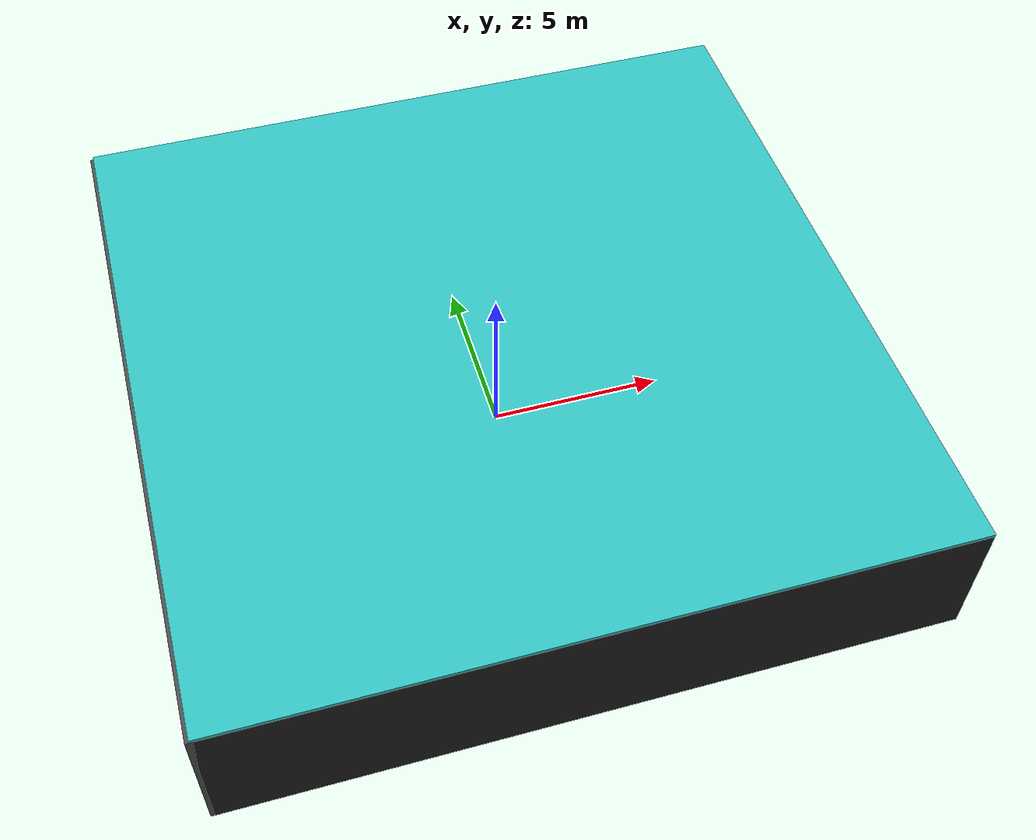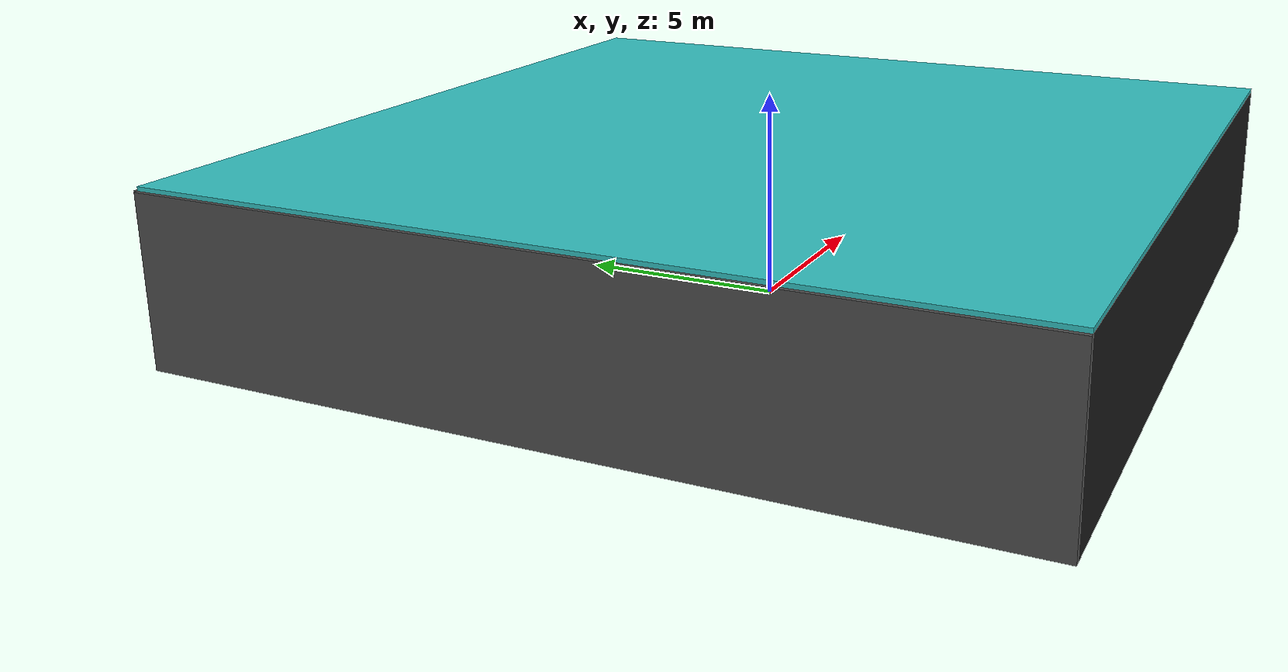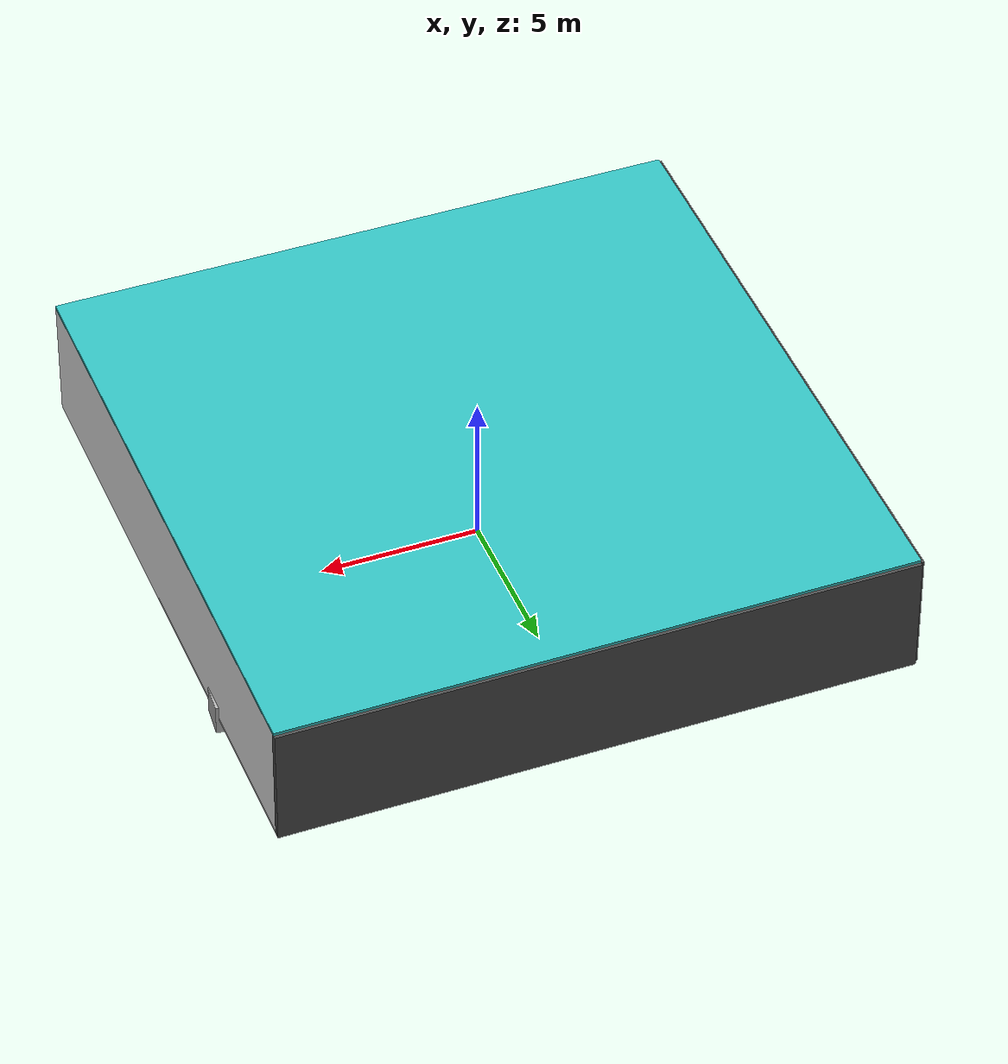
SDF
<sdf version="1.4">
 <world name="default">
  <physics type="ode">
   <max_step_size>0.001</max_step_size>
   <real_time_factor>1</real_time_factor>
   <real_time_update_rate>1000</real_time_update_rate>
   <gravity>0 0 -9.8</gravity>
  </physics>
  <scene><ambient>0.4 0.4 0.4 1</ambient><background>0.7 0.7 0.7 1</background><shadows>1</shadows></scene>
  <model name="Surrounding">
   <static>1</static>
   <link name="Ceiling">
    <collision name="Ceiling_Collision"><geometry><box><size>20 20 0.1</size></box></geometry></collision>
    <visual name="Ceiling_Visual">
     <geometry><box><size>20 20 0.1</size></box></geometry>
     <material>
      <script><uri>file://media/materials/scripts/gazebo.material</uri><name>Gazebo/TurquoiseGlow</name></script>
     </material>
    </visual>
    <pose>0 0 4.05 0 0 0</pose>
   </link>
   <link name="Wall_South">
    <collision name="Wall_South_Collision">
     <geometry><box><size>20 0 4</size></box></geometry>
     <pose>0 0 2 0 -0 0</pose>
    </collision>
    <visual name="Wall_South_Visual">
     <pose>0 0 2 0 -0 0</pose>
     <geometry><box><size>20 0 4</size></box></geometry>
     <material>
      <script><uri>file://media/materials/scripts/gazebo.material</uri><name>Gazebo/Black</name></script>
     </material>
    </visual>
    <velocity_decay><linear>0</linear><angular>0</angular></velocity_decay>
    <pose>0 -10 0 0 -0 0</pose>
   </link>
   <link name="Wall_East">
    <collision name="Wall_21_Collision">
     <geometry><box><size>20 0 4</size></box></geometry>
     <pose>0 0 2 0 -0 0</pose>
    </collision>
    <visual name="Wall_21_Visual">
     <pose>0 0 2 0 -0 0</pose>
     <geometry><box><size>20 0 4</size></box></geometry>
     <material>
      <script><uri>file://media/materials/scripts/gazebo.material</uri><name>Gazebo/WhiteGlow</name></script>
     </material>
    </visual>
    <velocity_decay><linear>0</linear><angular>0</angular></velocity_decay>
    <pose>10 0 0 0 -0 1.5708</pose>
   </link>
   <link name="Wall_North">
    <collision name="Wall_22_Collision">
     <geometry><box><size>20 0.2 4</size></box></geometry>
     <pose>0 0 2 0 -0 0</pose>
    </collision>
    <visual name="Wall_22_Visual">
     <pose>0 0 2 0 -0 0</pose>
     <geometry><box><size>20 0.2 4</size></box></geometry>
     <material>
      <script><uri>file://media/materials/scripts/gazebo.material</uri><name>Gazebo/DarkGrey</name></script>
     </material>
    </visual>
    <velocity_decay><linear>0</linear><angular>0</angular></velocity_decay>
    <pose>0 10 0 0 -0 0</pose>
   </link>
   <link name="Wall_West">
    <collision name="Wall_23_Collision">
     <geometry><box><size>20 0.2 4</size></box></geometry>
     <pose>0 0 2 0 -0 0</pose>
    </collision>
    <visual name="Wall_23_Visual">
     <pose>0 0 2 0 -0 0</pose>
     <geometry><box><size>20 0.2 4</size></box></geometry>
     <material>
      <script><uri>file://media/materials/scripts/gazebo.material</uri><name>Gazebo/DarkGrey</name></script>
     </material>
    </visual>
    <velocity_decay><linear>0</linear><angular>0</angular></velocity_decay>
    <pose>-10 0 0 0 0 -1.5708</pose>
   </link>
   <link name="Ground_link">
    <collision name="collision">
     <pose>0 0 .05 0 -0 0</pose>
     <geometry><box><size>20 20 0.1</size></box></geometry>
    </collision>
    <visual name="visual">
     <pose>0 0 .05 0 -0 0</pose>
     <geometry><box><size>20 20 0.1</size></box></geometry>
     <material>
      <script><uri>file://media/materials/scripts/gazebo.material</uri><name>Gazebo/LightOn</name></script>
     </material>
    </visual>
   </link>
   <static>1</static>
  </model>
  <spherical_coordinates>
   <surface_model>EARTH_WGS84</surface_model>
   <latitude_deg>0</latitude_deg>
   <longitude_deg>0</longitude_deg>
   <elevation>0</elevation>
   <heading_deg>0</heading_deg>
  </spherical_coordinates>
  <light name="lightball_0" type="diffuse">
   <diffuse>0.8 0.8 0.8 1</diffuse>
   <specular>0.2 0.2 0.2 1</specular>
   <attenuation>
    <range>100</range>
    <constant>0.7</constant>
    <linear>0.01</linear>
    <quadratic>0.001</quadratic>
   </attenuation>
   <direction>-0.5 0.1 -0.9</direction>
   <pose>-3.39669481193 -6.77028136865 2.27431678818 0 0 0</pose>
  </light>
  <light name="lightball_1" type="diffuse">
   <diffuse>0.8 0.8 0.8 1</diffuse>
   <specular>0.2 0.2 0.2 1</specular>
   <attenuation>
    <range>100</range>
    <constant>0.7</constant>
    <linear>0.01</linear>
    <quadratic>0.001</quadratic>
   </attenuation>
   <direction>-0.5 0.1 -0.9</direction>
   <pose>6.97211009853 0.411193106385 2.10613552725 0 0 0</pose>
  </light>
  <light name="lightball_2" type="diffuse">
   <diffuse>0.8 0.8 0.8 1</diffuse>
   <specular>0.2 0.2 0.2 1</specular>
   <attenuation>
    <range>100</range>
    <constant>0.7</constant>
    <linear>0.01</linear>
    <quadratic>0.001</quadratic>
   </attenuation>
   <direction>-0.5 0.1 -0.9</direction>
   <pose>0.783356035116 -2.47368946453 3.54785239624 0 0 0</pose>
  </light>
  <light name="lightball_3" type="diffuse">
   <diffuse>0.8 0.8 0.8 1</diffuse>
   <specular>0.2 0.2 0.2 1</specular>
   <attenuation>
    <range>100</range>
    <constant>0.7</constant>
    <linear>0.01</linear>
    <quadratic>0.001</quadratic>
   </attenuation>
   <direction>-0.5 0.1 -0.9</direction>
   <pose>-1.22190940146 -1.32787703109 3.31785164601 0 0 0</pose>
  </light>
  <light name="lightball_4" type="diffuse">
   <diffuse>0.8 0.8 0.8 1</diffuse>
   <specular>0.2 0.2 0.2 1</specular>
   <attenuation>
    <range>100</range>
    <constant>0.7</constant>
    <linear>0.01</linear>
    <quadratic>0.001</quadratic>
   </attenuation>
   <direction>-0.5 0.1 -0.9</direction>
   <pose>-5.96167035795 8.91870273146 3.27629597792 0 0 0</pose>
  </light>
  <light name="lightball_5" type="diffuse">
   <diffuse>0.8 0.8 0.8 1</diffuse>
   <specular>0.2 0.2 0.2 1</specular>
   <attenuation>
    <range>100</range>
    <constant>0.7</constant>
    <linear>0.01</linear>
    <quadratic>0.001</quadratic>
   </attenuation>
   <direction>-0.5 0.1 -0.9</direction>
   <pose>5.92025476365 1.30329072881 1.68338618005 0 0 0</pose>
  </light>
  <include>
   <uri>model://construction_cone</uri>
   <pose>-7.97734580967 -5.05610589051 0 0 0 1.11557061561</pose>
  </include>
  <include><uri>model://cabinet</uri><pose>-7.46816484719 -1.96391991012 0 0 0 2.47682528438</pose></include>
  <include><uri>model://cabinet</uri><pose>-8.09245692708 4.38567297668 0 0 0 1.17465332443</pose></include>
  <include>
   <uri>model://textured_shapes</uri>
   <pose>-3.80274443459 -4.94399831995 0 0 0 2.51253690202</pose>
  </include>
  <include>
   <uri>model://textured_shapes</uri>
   <pose>1.21479781615 2.25026408718 0 0 0 0.705449935435</pose>
  </include>
  <include><uri>model://table</uri><pose>1.69993702589 4.88250361474 0 0 0 0.165517522494</pose></include>
  <include>
   <uri>model://textured_shapes</uri>
   <pose>6.86998752299 -7.0218393604 0 0 0 0.088924162887</pose>
  </include>
  <include>
   <uri>model://textured_shapes</uri>
   <pose>8.05641081968 4.63151299567 0 0 0 1.46841193234</pose>
  </include>
 </world>
</sdf>

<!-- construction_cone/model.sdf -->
<sdf version="1.5">
  <model name="Construction Cone">
    <link name="link">
      <collision name="collision">
        <geometry>
          <mesh>
            <scale>10 10 10</scale>
            <uri>file://isr-testbed/construction_cone/meshes/construction_cone.dae</uri>
          </mesh>
        </geometry>
      </collision>
      <visual name="visual">
        <geometry>
          <mesh>
            <scale>10 10 10</scale>
            <uri>file://isr-testbed/construction_cone/meshes/construction_cone.dae</uri>
          </mesh>
        </geometry>
      </visual>
    </link>
  </model>
</sdf>

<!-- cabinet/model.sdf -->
<sdf version="1.5">
  <model name="cabinet">
    <static>true</static>
    <link name="cabinet_bottom_plate">
      <inertial>
        <pose>0 0 -1 0 0 0</pose>
        <inertia>
          <ixx>2.050000</ixx>
          <ixy>0</ixy>
          <ixz>0</ixz>
          <iyy>2.050000</iyy>
          <iyz>0</iyz>
          <izz>2.050000</izz>
        </inertia>
        <mass>25.000000</mass>
      </inertial>
      <collision name="cabinet_bottom_plate_geom">
        <pose>0 0 0.010000 0 0 0</pose>
        <geometry>
          <box>
            <size>0.450000 0.450000 0.020000</size>
          </box>
        </geometry>
      </collision>
      <visual name="cabinet_bottom_plate_geom_visual">
        <pose>0 0 0.010000 0 0 0</pose>
        <geometry>
          <box>
            <size>0.450000 0.450000 0.020000</size>
          </box>
        </geometry>
        <material>
          <script>
            <uri>model://media/materials/scripts/gazebo.material</uri>
            <name>Gazebo/Wood</name>
          </script>
        </material>
      </visual>
      <collision name="cabinet_bottom_plate_geom_cabinet_back_plate">
        <pose>0.235000 0 0.510000 0 0 0</pose>
        <geometry>
          <box>
            <size>0.020000 0.450000 1.020000</size>
          </box>
        </geometry>
      </collision>
      <visual name="cabinet_bottom_plate_geom_cabinet_back_plate_visual">
        <pose>0.235000 0 0.510000 0 0 0</pose>
        <geometry>
          <box>
            <size>0.020000 0.450000 1.020000</size>
          </box>
        </geometry>
        <material>
          <script>
            <uri>model://media/materials/scripts/gazebo.material</uri>
            <name>Gazebo/Wood</name>
          </script>
        </material>
      </visual>
      <collision name="cabinet_bottom_plate_geom_cabinet_left_plate">
        <pose>0 0.235000 0.510000 0 0 0</pose>
        <geometry>
          <box>
            <size>0.450000 0.020000 1.020000</size>
          </box>
        </geometry>
      </collision>
      <visual name="cabinet_bottom_plate_geom_cabinet_left_plate_visual">
        <pose>0 0.235000 0.510000 0 0 0</pose>
        <geometry>
          <box>
            <size>0.450000 0.020000 1.020000</size>
          </box>
        </geometry>
        <material>
          <script>
            <uri>model://media/materials/scripts/gazebo.material</uri>
            <name>Gazebo/Wood</name>
          </script>
        </material>
      </visual>
      <collision name="cabinet_bottom_plate_geom_cabinet_middle_plate">
        <pose>0 0 0.510000 0 0 0</pose>
        <geometry>
          <box>
            <size>0.450000 0.450000 0.020000</size>
          </box>
        </geometry>
      </collision>
      <visual name="cabinet_bottom_plate_geom_cabinet_middle_plate_visual">
        <pose>0 0 0.510000 0 0 0</pose>
        <geometry>
          <box>
            <size>0.450000 0.450000 0.020000</size>
          </box>
        </geometry>
        <material>
          <script>
            <uri>model://media/materials/scripts/gazebo.material</uri>
            <name>Gazebo/Wood</name>
          </script>
        </material>
      </visual>
      <collision name="cabinet_bottom_plate_geom_cabinet_right_plate">
        <pose>0 -0.235000 0.510000 0 0 0</pose>
        <geometry>
          <box>
            <size>0.450000 0.020000 1.020000</size>
          </box>
        </geometry>
      </collision>
      <visual name="cabinet_bottom_plate_geom_cabinet_right_plate_visual">
        <pose>0 -0.235000 0.510000 0 0 0</pose>
        <geometry>
          <box>
            <size>0.450000 0.020000 1.020000</size>
          </box>
        </geometry>
        <material>
          <script>
            <uri>model://media/materials/scripts/gazebo.material</uri>
            <name>Gazebo/Wood</name>
          </script>
        </material>
      </visual>
      <collision name="cabinet_bottom_plate_geom_cabinet_top_plate">
        <pose>0 0 1.010000 0 0 0</pose>
        <geometry>
          <box>
            <size>0.450000 0.450000 0.020000</size>
          </box>
        </geometry>
      </collision>
      <visual name="cabinet_bottom_plate_geom_cabinet_top_plate_visual">
        <pose>0 0 1.010000 0 0 0</pose>
        <geometry>
          <box>
            <size>0.450000 0.450000 0.020000</size>
          </box>
        </geometry>
        <material>
          <script>
            <uri>model://media/materials/scripts/gazebo.material</uri>
            <name>Gazebo/Wood</name>
          </script>
        </material>
      </visual>
    </link>
  </model>
</sdf>

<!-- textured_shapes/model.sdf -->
<sdf version="1.6">
  <model name="textured_shapes">
    <pose>0 0 0.5 0 0 0</pose>
    <link name="box">
      <pose>0 -1.5 0 0 0 0</pose>
      <collision name="collision">
        <geometry>
          <box>
            <size>1 1 1</size>
          </box>
        </geometry>
      </collision>
      <visual name="visual">
        <geometry>
          <box>
            <size>1 1 1</size>
          </box>
        </geometry>
        <material>
          <script>
            <uri>model://../model_source/models/textured_shapes/materials/scripts</uri>
            <uri>model://../model_source/models/textured_shapes/materials/textures</uri>
            <name>TexturedShape/Squares</name>
          </script>
        </material>
      </visual>
    </link>
    <link name="sphere">
      <collision name="collision">
        <geometry>
          <sphere>
            <radius>0.5</radius>
          </sphere>
        </geometry>
      </collision>
      <visual name="visual">
        <geometry>
          <sphere>
            <radius>0.5</radius>
          </sphere>
        </geometry>
        <material>
          <script>
            <uri>model://../model_source/models/textured_shapes/materials/scripts</uri>
            <uri>model://../model_source/models/textured_shapes/materials/textures</uri>
            <name>TexturedShape/Squares</name>
          </script>
        </material>
      </visual>
    </link>
    <link name="cylinder">
      <pose>0 1.5 0 0 0 0</pose>
      <collision name="collision">
        <geometry>
          <cylinder>
            <radius>0.5</radius>
            <length>1</length>
          </cylinder>
        </geometry>
      </collision>
      <visual name="visual">
        <geometry>
          <cylinder>
            <radius>0.5</radius>
            <length>1</length>
          </cylinder>
        </geometry>
        <material>
          <script>
            <uri>model://../model_source/models/textured_shapes/materials/scripts</uri>
            <uri>model://../model_source/models/textured_shapes/materials/textures</uri>
            <name>TexturedShape/Squares</name>
          </script>
        </material>
      </visual>
    </link>
  </model>
</sdf>

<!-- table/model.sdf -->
<sdf version="1.5">
  <model name="table">
    <static>true</static>
    <link name="link">
      <collision name="surface">
        <pose>0 0 1.0 0 0 0</pose>
        <geometry>
          <box>
            <size>1.5 0.8 0.03</size>
          </box>
        </geometry>
        <surface>
          <friction>
            <ode>
              <mu>0.6</mu>
              <mu2>0.6</mu2>
            </ode>
          </friction>
        </surface>
      </collision>
      <visual name="visual1">
        <pose>0 0 1.0 0 0 0</pose>
        <geometry>
          <box>
            <size>1.5 0.8 0.03</size>
          </box>
        </geometry>
        <material>
          <script>
            <uri>model://media/materials/scripts/gazebo.material</uri>
            <name>Gazebo/Wood</name>
          </script>
        </material>
      </visual>
      <collision name="front_left_leg">
        <pose>0.68 0.38 0.5 0 0 0</pose>
        <geometry>
          <cylinder>
            <radius>0.02</radius>
            <length>1.0</length>
          </cylinder>
        </geometry>
      </collision>
      <visual name="front_left_leg">
        <pose>0.68 0.38 0.5 0 0 0</pose>
        <geometry>
          <cylinder>
            <radius>0.02</radius>
            <length>1.0</length>
          </cylinder>
        </geometry>
        <material>
          <script>
            <uri>model://media/materials/scripts/gazebo.material</uri>
            <name>Gazebo/Grey</name>
          </script>
        </material>
      </visual>
      <collision name="front_right_leg">
        <pose>0.68 -0.38 0.5 0 0 0</pose>
        <geometry>
          <cylinder>
            <radius>0.02</radius>
            <length>1.0</length>
          </cylinder>
        </geometry>
      </collision>
      <visual name="front_right_leg">
        <pose>0.68 -0.38 0.5 0 0 0</pose>
        <geometry>
          <cylinder>
            <radius>0.02</radius>
            <length>1.0</length>
          </cylinder>
        </geometry>
        <material>
          <script>
            <uri>model://media/materials/scripts/gazebo.material</uri>
            <name>Gazebo/Grey</name>
          </script>
        </material>
      </visual>
      <collision name="back_right_leg">
        <pose>-0.68 -0.38 0.5 0 0 0</pose>
        <geometry>
          <cylinder>
            <radius>0.02</radius>
            <length>1.0</length>
          </cylinder>
        </geometry>
      </collision>
      <visual name="back_right_leg">
        <pose>-0.68 -0.38 0.5 0 0 0</pose>
        <geometry>
          <cylinder>
            <radius>0.02</radius>
            <length>1.0</length>
          </cylinder>
        </geometry>
        <material>
          <script>
            <uri>model://media/materials/scripts/gazebo.material</uri>
            <name>Gazebo/Grey</name>
          </script>
        </material>
      </visual>
      <collision name="back_left_leg">
        <pose>-0.68 0.38 0.5 0 0 0</pose>
        <geometry>
          <cylinder>
            <radius>0.02</radius>
            <length>1.0</length>
          </cylinder>
        </geometry>
      </collision>
      <visual name="back_left_leg">
        <pose>-0.68 0.38 0.5 0 0 0</pose>
        <geometry>
          <cylinder>
            <radius>0.02</radius>
            <length>1.0</length>
          </cylinder>
        </geometry>
        <material>
          <script>
            <uri>model://media/materials/scripts/gazebo.material</uri>
            <name>Gazebo/Grey</name>
          </script>
        </material>
      </visual>
    </link>
  </model>
</sdf>
